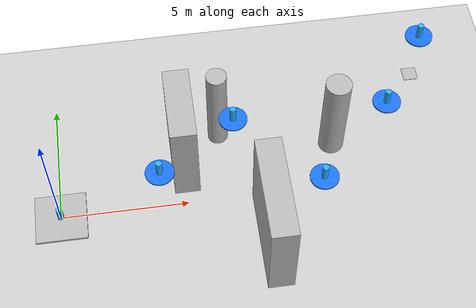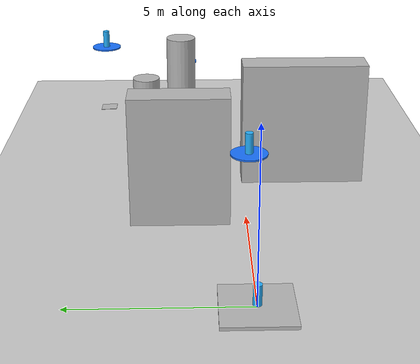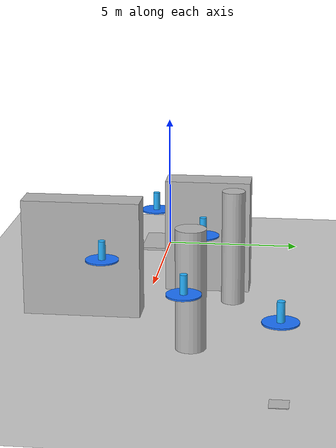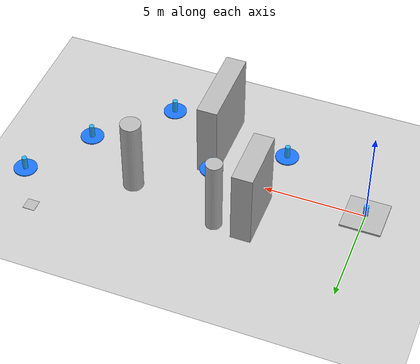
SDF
<?xml version="1.0" ?>
<sdf version="1.6">
  <world name="practice_world">
    <include><uri>model://sun</uri></include>
    <include><uri>model://ground_plane</uri></include>

    <include>
      <uri>model://start_marker</uri>
      <name>start_pad</name>
      <pose>0 0 0 0 0 0</pose>
    </include>
    <include>
      <uri>model://landing_pad</uri>
      <name>landing_pad</name>
      <pose>15.0 5.0 0 0 0 0</pose>
    </include>

    <!-- 물리 엔진 설정 -->
    <physics name='default_physics' default='0' type='ode'>
      <gravity>0 0 -9.8066</gravity>
      <ode>
        <solver>
          <type>quick</type>
          <iters>10</iters>
          <sor>1.3</sor>
        </solver>
        <constraints>
          <cfm>0</cfm>
          <erp>0.2</erp>
          <contact_max_correcting_vel>100</contact_max_correcting_vel>
          <contact_surface_layer>0.001</contact_surface_layer>
        </constraints>
      </ode>
      <max_step_size>0.004</max_step_size>
      <real_time_factor>1</real_time_factor>
      <real_time_update_rate>250</real_time_update_rate>
    </physics>

    <include><uri>model://waypoint_marker</uri><name>wp0</name><pose>0 0 0 0 0 0</pose></include>
    <include><uri>model://waypoint_marker</uri><name>wp1</name><pose>4 0 2.5 0 0 0</pose></include>
    <include><uri>model://waypoint_marker</uri><name>wp2</name><pose>7 2 2.5 0 0 0</pose></include>
    <include><uri>model://waypoint_marker</uri><name>wp3</name><pose>10 -1 2.5 0 0 0</pose></include>
    <include><uri>model://waypoint_marker</uri><name>wp4</name><pose>13 2 2.5 0 0 0</pose></include>
    <include><uri>model://waypoint_marker</uri><name>wp5</name><pose>15 5 2.5 0 0 0</pose></include>

    <model name="wall_left_1">
      <static>true</static>
      <pose>5 2 2 0 0 0</pose>
      <link name="link">
        <collision name="collision"><geometry><box><size>1 3 4</size></box></geometry></collision>
        <visual name="visual"><geometry><box><size>1 3 4</size></box></geometry></visual>
      </link>
    </model>

    <model name="wall_right_1">
      <static>true</static>
      <pose>8 -2 2 0 0 0</pose>
      <link name="link">
        <collision name="collision"><geometry><box><size>1 4 4</size></box></geometry></collision>
        <visual name="visual"><geometry><box><size>1 4 4</size></box></geometry></visual>
      </link>
    </model>

    <model name="pillar_mid">
      <static>true</static>
      <pose>11 2 2 0 0 0</pose>
      <link name="link">
        <collision name="collision">
          <geometry><cylinder><radius>0.5</radius><length>4</length></cylinder></geometry>
        </collision>
        <visual name="visual">
          <geometry><cylinder><radius>0.5</radius><length>4</length></cylinder></geometry>
        </visual>
      </link>
    </model>

    <model name="obstacle_cylinder_1">
      <static>true</static>
      <pose>6.5 3.0 2.0 0 0 0</pose>
      <link name="link">
        <collision name="collision">
          <geometry><cylinder><radius>0.4</radius><length>4.0</length></cylinder></geometry>
        </collision>
        <visual name="visual">
          <geometry><cylinder><radius>0.4</radius><length>4.0</length></cylinder></geometry>
        </visual>
      </link>
    </model>

    <gui fullscreen='0'>
      <camera name='user_camera'>
        <pose>-5 -5 10 0 0.8 0.5</pose>
      </camera>
    </gui>
  </world>
</sdf>

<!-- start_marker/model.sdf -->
<sdf version="1.4">
    <model name="start_marker">
      <pose>0 0 0  0 0 0</pose>
      <static>true</static>
      <link name="body">
        <visual name="visual">
          <geometry>
            <mesh><uri>model://start_marker/meshes/marker.obj</uri></mesh>
          </geometry>
        </visual>
      </link>
    </model>
</sdf>

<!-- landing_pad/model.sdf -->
<sdf version="1.5">
  <model name="landing_pad">
    <pose>5.0 0 0.01 0 0 0</pose>
    <static>true</static>
    <link name="link">
      <inertial>
        <mass>0.5</mass>
        <inertia>
          <ixx>0.001</ixx>
          <ixy>0</ixy>
          <ixz>0</ixz>
          <iyy>0.001</iyy>
          <iyz>0</iyz>
          <izz>0.001</izz>
        </inertia>
      </inertial>
      <collision name="collision">
        <geometry>
          <box>
            <size>0.6 0.6 0.02</size>
          </box>
        </geometry>
      </collision>
      <visual name="visual">
        <geometry>
          <box>
            <size>0.6 0.6 0.02</size>
          </box>
        </geometry>
        <material>
          <script>
            <uri>model://landing_pad/materials/scripts</uri>
	          <uri>model://landing_pad/materials/textures</uri>
            <name>Cube/landing_pad</name>
          </script>
        </material>
      </visual>
    </link>
  </model>
</sdf>

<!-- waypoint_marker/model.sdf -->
<sdf version="1.7">
  <model name="waypoint_marker">
    <static>true</static>
    <link name="waypoint_link">
      <visual name="waypoint_disc">
        <pose>0 0 0.025 0 0 0</pose>
        <geometry><cylinder><radius>0.55</radius><length>0.05</length></cylinder></geometry>
        <material>
          <ambient>0.05 0.25 0.80 1</ambient>
          <diffuse>0.10 0.45 1.00 1</diffuse>
          <emissive>0.02 0.08 0.22 1</emissive>
        </material>
      </visual>
      <visual name="waypoint_beacon">
        <pose>0 0 0.35 0 0 0</pose>
        <geometry><cylinder><radius>0.12</radius><length>0.65</length></cylinder></geometry>
        <material>
          <ambient>0.10 0.55 1.00 1</ambient>
          <diffuse>0.15 0.70 1.00 1</diffuse>
          <emissive>0.04 0.18 0.35 1</emissive>
        </material>
      </visual>
    </link>
  </model>
</sdf>
